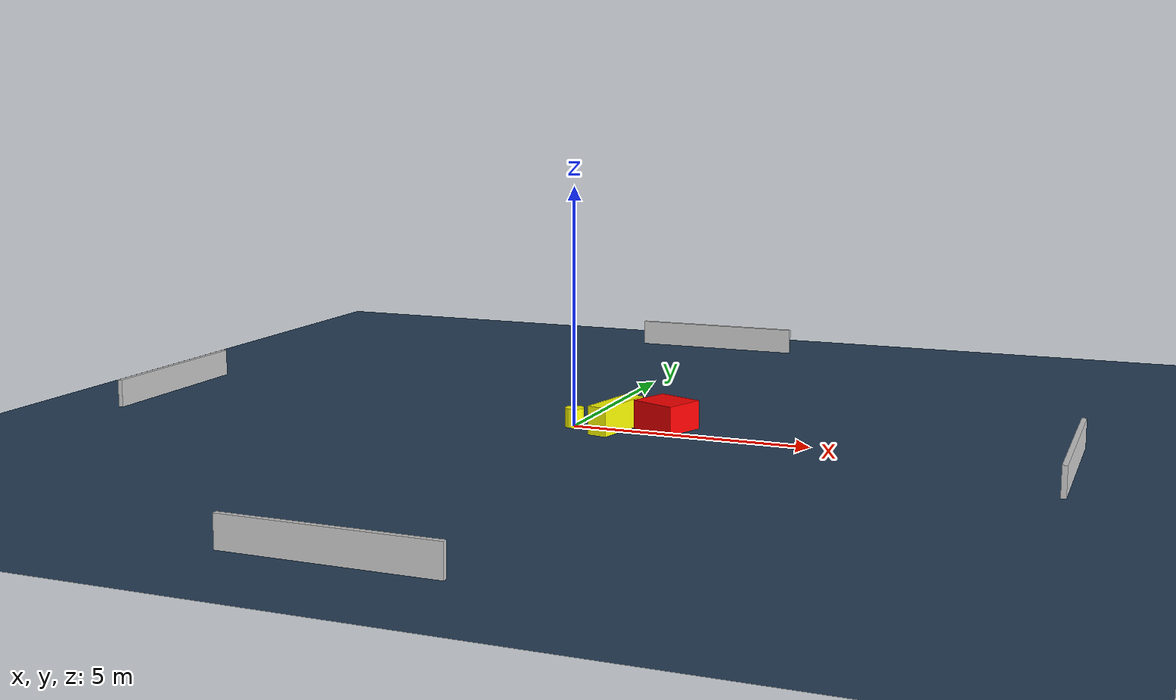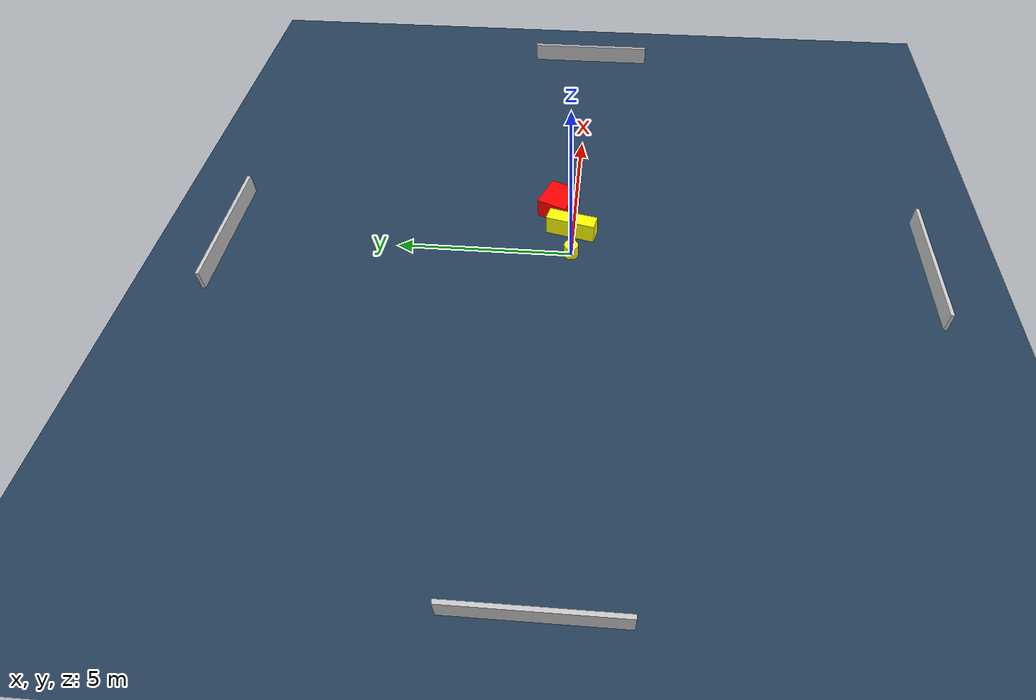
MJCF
<?xml version="1.0" ?>
<mujoco model="generated_environment">
  <option timestep="0.01" integrator="RK4" cone="elliptic"/>
  <default>
    <geom density="1"/>
  </default>
  <asset>
    <texture builtin="gradient" height="3072" name="skybox" rgb1="0.3 0.5 0.7" rgb2="0 0 0" type="skybox" width="512"/>
    <texture builtin="checker" height="300" name="groundplane" rgb1="0.2 0.3 0.4" rgb2="0.1 0.2 0.3" type="2d" width="300"/>
    <material name="groundplane" reflectance="0.2" texrepeat="5 5" texture="groundplane"/>
  </asset>
  <worldbody>
    <light dir="0 0 -1" directional="true" pos="0 0 1.5"/>
    <geom condim="3" friction="0.5 0.005 0.001" material="groundplane" name="floor" pos="0 0 0" size="0 0 0.05" type="plane"/>
    <body name="walls">
      <geom name="wall_1" condim="4" pos="-10.0 0.0 0.3" rgba="0.800000011920929 0.800000011920929 0.800000011920929 1.0" size="0.05 2.0 0.3" type="box"/>
      <geom name="wall_2" condim="4" pos="10.0 0.0 0.3" rgba="0.800000011920929 0.800000011920929 0.800000011920929 1.0" size="0.05 2.0 0.3" type="box"/>
      <geom name="wall_3" condim="4" pos="0.0 -10.0 0.3" rgba="0.800000011920929 0.800000011920929 0.800000011920929 1.0" size="2.0 0.05 0.3" type="box"/>
      <geom name="wall_4" condim="4" pos="0.0 10.0 0.3" rgba="0.800000011920929 0.800000011920929 0.800000011920929 1.0" size="2.0 0.05 0.3" type="box"/>
    </body>
    <body name="robot">
      <joint name="joint_x" type="slide" pos="0 0 0" axis="1 0 0"/>
      <joint name="joint_y" type="slide" pos="0 0 0" axis="0 1 0"/>
      <geom name="robot" type="cylinder" pos="0.0 0.0 0.2" size="0.2 0.2 0.0" mass="5.0" friction="1.0 0.005 0.0001" condim="4" rgba="1.0 1.0 0.0 1.0"/>
    </body>
    <body name="obstacle_1_movable">
      <geom name="obstacle_1_movable" condim="4" pos="0.898043377909341 0.048063378589503124 0.3" euler="0 0 347.4388703788338" friction="0.0 0.005 0.001" rgba="1.0 1.0 0.0 1.0" size="0.20922404456314414 0.7162473786638985 0.3" type="box" mass="0.1"/>
      <joint type="free"/>
    </body>
    <body name="obstacle_2_static">
      <geom name="obstacle_2_static" condim="4" pos="1.843934055562304 0.5058011015295445 0.3" euler="0 0 157.93190676250222" friction="0.0 0.005 0.001" rgba="1.0 0.0 0.0 1.0" size="0.49434362369051926 0.45287017004813007 0.3" type="box"/>
    </body>
  </worldbody>
  <actuator>
    <motor name="actuator_x" joint="joint_x" gear="1" ctrlrange="-1 1"/>
    <motor name="actuator_y" joint="joint_y" gear="1" ctrlrange="-1 1"/>
  </actuator>
</mujoco>
